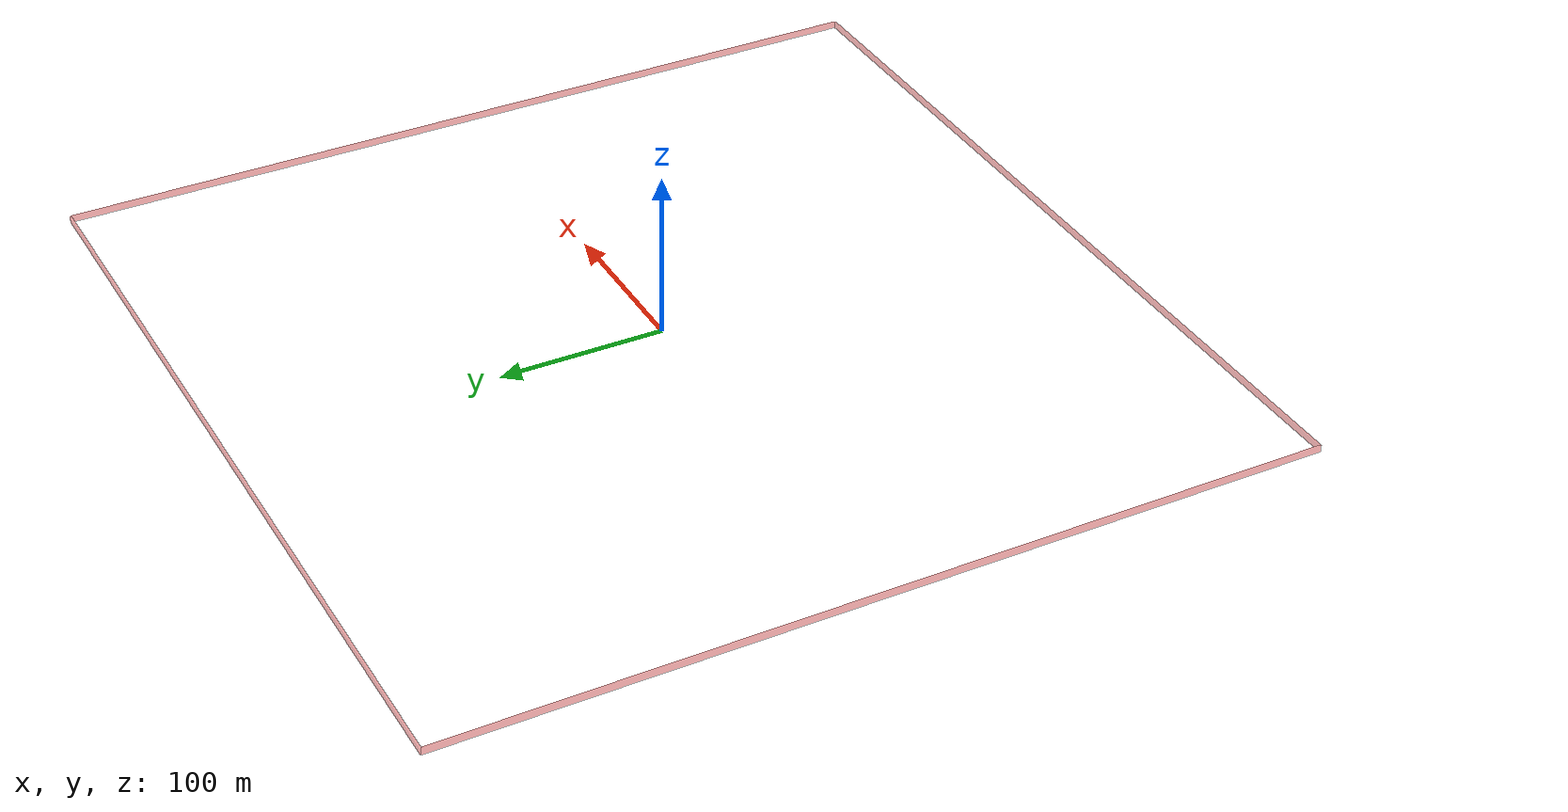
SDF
<sdf version="1.6">
 <world name="apollo15_map_only">
  <physics type="ode">
   <max_step_size>0.001</max_step_size>
   <real_time_update_rate>1000</real_time_update_rate>
   <real_time_factor>1.0</real_time_factor>
   <gravity>0 0 -9.8</gravity>
  </physics>
  <model_plugin_loading_timeout>600</model_plugin_loading_timeout>
  <scene>
   <ambient>0.45 0.45 0.45 1</ambient>
   <background>0.75 0.75 0.75 1</background>
   <shadows>true</shadows>
  </scene>
  <include><uri>model://sun</uri></include>
  <model name="boundary_walls">
   <static>true</static>
   <link name="north_wall">
    <pose>0 260 2.0 0 0 0</pose>
    <collision name="collision"><geometry><box><size>520 1.0 4.0</size></box></geometry></collision>
    <visual name="visual">
     <geometry><box><size>520 1.0 4.0</size></box></geometry>
     <material><ambient>0.85 0.15 0.15 0.45</ambient><diffuse>0.90 0.20 0.20 0.45</diffuse></material>
    </visual>
   </link>
   <link name="south_wall">
    <pose>0 -260 2.0 0 0 0</pose>
    <collision name="collision"><geometry><box><size>520 1.0 4.0</size></box></geometry></collision>
    <visual name="visual">
     <geometry><box><size>520 1.0 4.0</size></box></geometry>
     <material><ambient>0.85 0.15 0.15 0.45</ambient><diffuse>0.90 0.20 0.20 0.45</diffuse></material>
    </visual>
   </link>
   <link name="east_wall">
    <pose>260 0 2.0 0 0 0</pose>
    <collision name="collision"><geometry><box><size>1.0 520 4.0</size></box></geometry></collision>
    <visual name="visual">
     <geometry><box><size>1.0 520 4.0</size></box></geometry>
     <material><ambient>0.85 0.15 0.15 0.45</ambient><diffuse>0.90 0.20 0.20 0.45</diffuse></material>
    </visual>
   </link>
   <link name="west_wall">
    <pose>-260 0 2.0 0 0 0</pose>
    <collision name="collision"><geometry><box><size>1.0 520 4.0</size></box></geometry></collision>
    <visual name="visual">
     <geometry><box><size>1.0 520 4.0</size></box></geometry>
     <material><ambient>0.85 0.15 0.15 0.45</ambient><diffuse>0.90 0.20 0.20 0.45</diffuse></material>
    </visual>
   </link>
  </model>
 </world>
</sdf>
